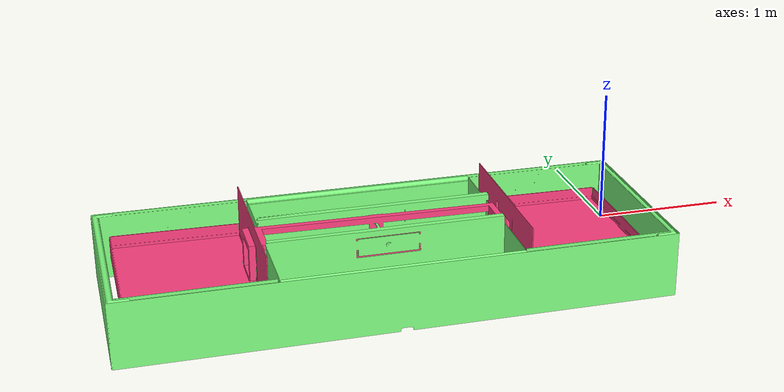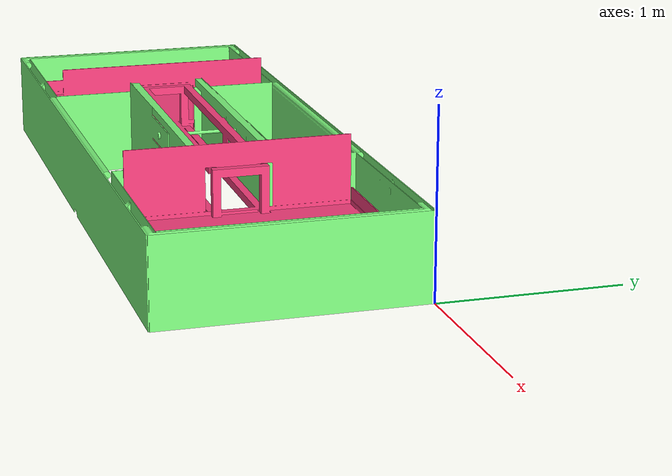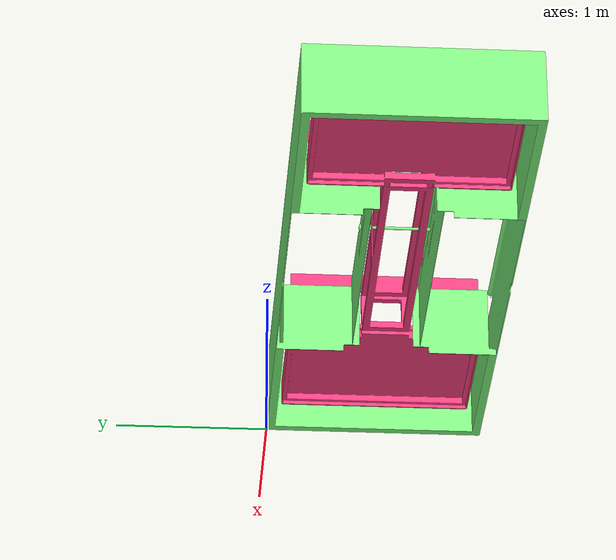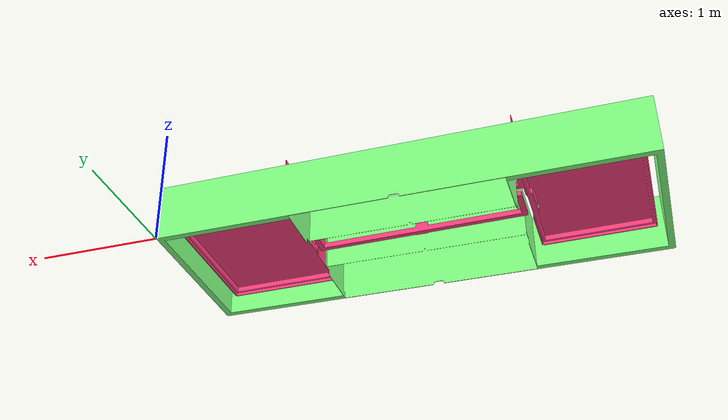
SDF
<?xml version="1.0" encoding="utf-8"?>
<sdf version="1.7">
  <model name="Switch">
    <pose>0 0 1.73472347597681E-17 0 0 0</pose>
    <link name="SwitchBase">
      <gravity>1</gravity>
      <self_collide>0</self_collide>
      <pose>-1.94930231043484 -0.710660931772002 0.235895978961787 1.56083715346702 -0.0111679625054779 -1.58452574383917</pose>
      <must_be_base_link>0</must_be_base_link>
      <velocity_decay>
        <linear>0</linear>
        <angular>0</angular>
      </velocity_decay>
      <inertial>
        <mass>81.8371477628258</mass>
        <pose>0 0 0 0 0 0</pose>
        <inertia>
          <ixx>0.671725360517504</ixx>
          <ixy>0.414975205473895</ixy>
          <ixz>1.70824830286996</ixz>
          <iyy>18.2756885389048</iyy>
          <iyz>0.0226876778943001</iyz>
          <izz>18.1734623592377</izz>
        </inertia>
      </inertial>
      <collision name="SwitchBase_collision">
        <pose>0.00278733220058235 -0.234161479413464 0.0192355113635591 0 0 0</pose>
        <geometry>
          <mesh>
            <scale>1 1 1</scale>
            <uri>model://Switch/meshes/SwitchBase_col.STL</uri>
          </mesh>
        </geometry>
        <surface>
          <contact>
            <ode />
          </contact>
          <friction>
            <ode>
              <mu>1</mu>
              <mu2>1</mu2>
            </ode>
          </friction>
        </surface>
      </collision>
      <visual name="SwitchBase_visual">
        <pose>0.00278733220058235 -0.234161479413464 0.0192355113635591 0 0 0</pose>
        <material>
          <ambient>0.501960784313725 1 0.501960784313725 1</ambient>
          <diffuse>0.501960784313725 1 0.501960784313725 1</diffuse>
        </material>
        <geometry>
          <mesh>
            <scale>1 1 1</scale>
            <uri>model://Switch/meshes/SwitchBase.STL</uri>
          </mesh>
        </geometry>
      </visual>
    </link>

    <joint name="SwitchBase-World" type="fixed">
      <parent>world</parent>
      <child>SwitchBase</child>
   </joint>
    <link name="SwitchArm">
      <gravity>1</gravity>
      <self_collide>0</self_collide>
      <pose>-1.95097470543896 -0.71121363366971 0.277429681849084 1.56083715346702 -0.0111679625054779 -1.58452574383917</pose>
      <must_be_base_link>0</must_be_base_link>
      <velocity_decay>
        <linear>0</linear>
        <angular>0</angular>
      </velocity_decay>
      <inertial>
        <mass>38.1967963297716</mass>
        <pose>0 0 0 0 0 0</pose>
        <inertia>
          <ixx>53.1684372630027</ixx>
          <ixy>0.0207602613518314</ixy>
          <ixz>0.70905846230451</ixz>
          <iyy>55.0577635708108</iyy>
          <iyz>0.00376744054542572</iyz>
          <izz>1.94863377057256</izz>
        </inertia>
      </inertial>
      <collision name="SwitchArm_collision">
        <pose>0.00174792080733605 -0.275667526401305 0.017157399873175 0 0 0</pose>
        <geometry>
          <mesh>
            <scale>1 1 1</scale>
            <uri>model://Switch/meshes/SwitchArm_col.STL</uri>
          </mesh>
        </geometry>
        <surface>
          <contact>
            <ode />
          </contact>
          <friction>
            <ode>
              <mu>1</mu>
            </ode>
          </friction>
        </surface>
      </collision>
      <visual name="SwitchArm_visual">
        <pose>0.00174792080733605 -0.275667526401305 0.017157399873175 0 0 0</pose>
        <material>
          <ambient>1 0.250980392156863 0.501960784313725 1</ambient>
          <diffuse>1 0.250980392156863 0.501960784313725 1</diffuse>
        </material>
        <geometry>
          <mesh>
            <scale>1 1 1</scale>
            <uri>model://Switch/meshes/SwitchArm.STL</uri>
          </mesh>
        </geometry>
      </visual>
    </link>
    <joint name="SwitchBase-SwitchArm" type="revolute">
      <parent>SwitchBase</parent>
      <child>SwitchArm</child>
      <pose>0.00156401763844416 0.141795833491346 -1.08259137786212E-05 0 0 0</pose>
      <axis>
        <xyz>0.999843397866503 -0.0110293969633813 -0.0138395139145314</xyz>
        <dynamics>
          <damping>1</damping>
          <friction>1</friction>
        </dynamics>
        <limit>
          <upper>0.05</upper>
          <lower>-0.05</lower>
          <effort>1</effort>
        </limit>
      </axis>
    </joint>

  </model>
</sdf>
